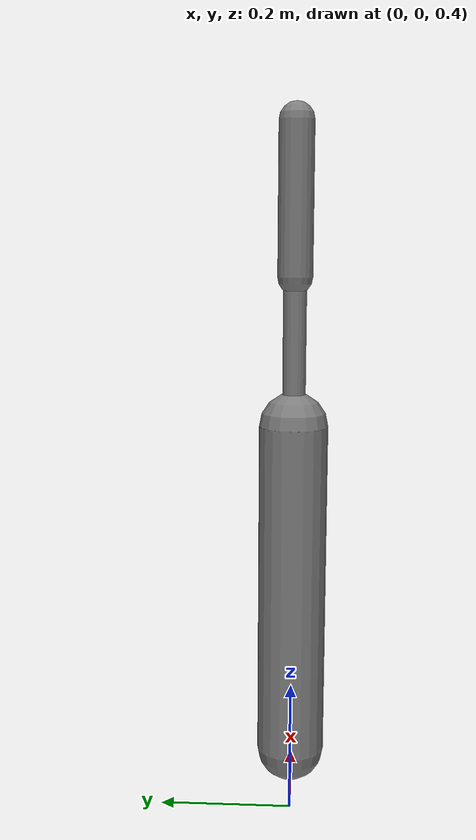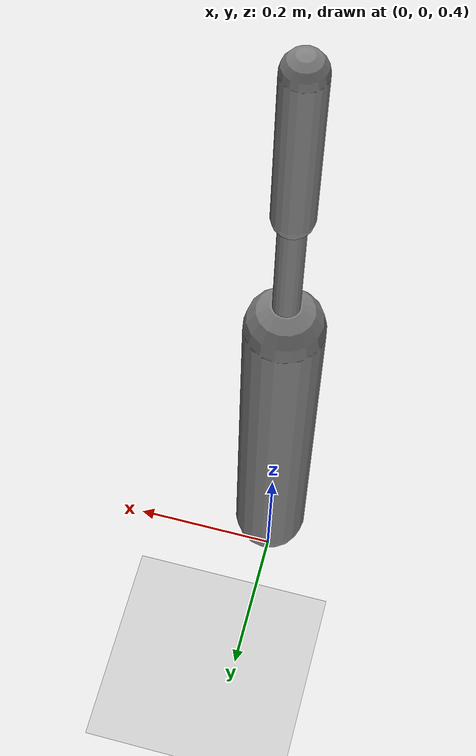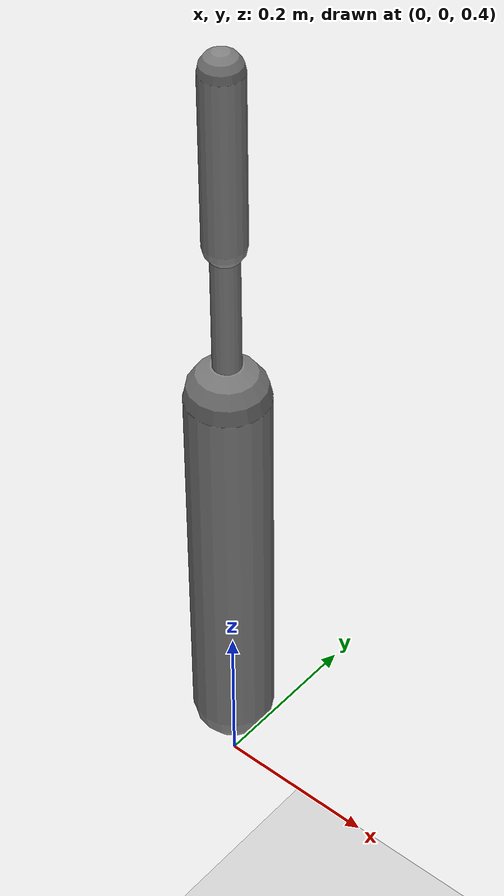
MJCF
<?xml version='1.0' encoding='UTF-8'?>
<mujoco model="RobotModel">
  <option gravity="0 0 -9.81" timestep="0.002" solver="CG" iterations="500" integrator="Euler"/>
  <worldbody>
    <geom name="Floor" type="plane" size="10 10 0.1" pos="0 0 0" rgba="0.8 0.8 0.8 1"/>
    <body name="Limb0" pos="0 0 0.5">
      <geom type="capsule" fromto="0 0 0 0 0 0.5" size="0.05" density="1000" contype="1" conaffinity="1"/>
      <body name="Limb0_e82d24a8" pos="0 0 0.5">
        <geom type="capsule" fromto="0 0 0 0 0 0.21385737246960349" size="0.01665715850367442" density="800" contype="1" conaffinity="1"/>
        <body name="Limb1_e82d24a8" pos="0 0 0.21385737246960349">
          <geom type="capsule" fromto="0 0 0 0 0 0.21520670250059173" size="0.025131382156525238" density="800" contype="1" conaffinity="1"/>
          <joint name="Joint_Limb0_e82d24a8_Limb1_e82d24a8_0" type="hinge" axis="1 0 0" range="-60 60"/>
        </body>
        <joint name="Joint_Limb0_Limb0_e82d24a8_0" type="hinge" axis="0 1 0" range="-60 60"/>
      </body>
    </body>
  </worldbody>
  <actuator>
    <position name="position_Actuator_Joint_Limb0_Limb0_e82d24a8_0" joint="Joint_Limb0_Limb0_e82d24a8_0" gear="1.0"/>
    <position name="position_Actuator_Joint_Limb0_e82d24a8_Limb1_e82d24a8_0" joint="Joint_Limb0_e82d24a8_Limb1_e82d24a8_0" gear="1.0"/>
  </actuator>
</mujoco>
